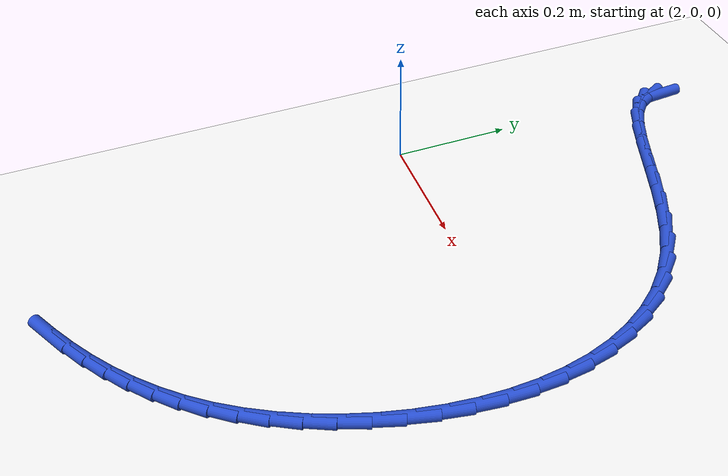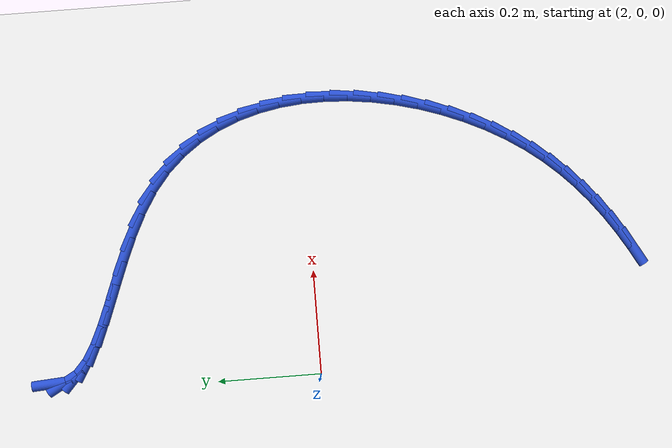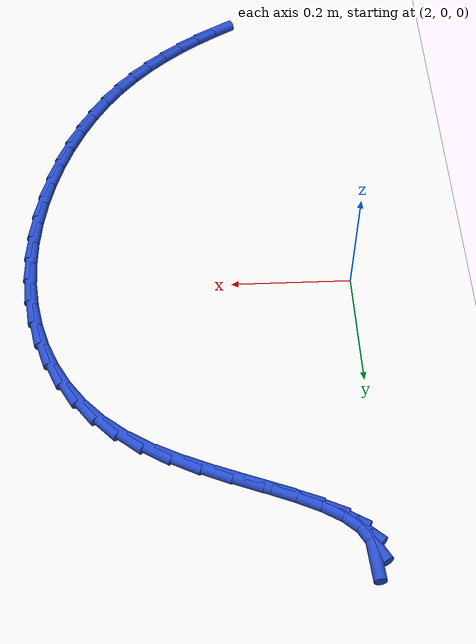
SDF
<sdf version="1.6">
 <world name="default">
  <model name="ground_plane">
   <static>1</static>
   <link name="link">
    <collision name="collision">
     <geometry><plane><normal>0 0 1</normal><size>100 100</size></plane></geometry>
     <surface><friction><ode><mu>100</mu><mu2>50</mu2></ode></friction></surface>
    </collision>
    <visual name="visual">
     <cast_shadows>0</cast_shadows>
     <geometry><plane><normal>0 0 1</normal><size>100 100</size></plane></geometry>
     <material>
      <script><uri>file://media/materials/scripts/gazebo.material</uri><name>Gazebo/WhiteGlow</name></script>
     </material>
    </visual>
   </link>
  </model>
  <model name="line">
   <link name="link_93">
    <pose>2.02116203512016 0.5168702736107054 0.01 0 1.57 -1.4988462729532606</pose>
    <collision name="collision">
     <geometry><cylinder><radius>0.01</radius><length>0.08</length></cylinder></geometry>
    </collision>
    <visual name="visual">
     <material>
      <script><name>Gazebo/Blue</name><uri>file://media/materials/scripts/gazebo.material</uri></script>
     </material>
     <geometry><cylinder><radius>0.01</radius><length>0.08</length></cylinder></geometry>
    </visual>
   </link>
   <link name="link_94">
    <pose>2.0230187391214285 0.49110936223888774 0.01 0 1.57 -1.0598061663948848</pose>
    <collision name="collision">
     <geometry><cylinder><radius>0.01</radius><length>0.08</length></cylinder></geometry>
    </collision>
    <visual name="visual">
     <material>
      <script><name>Gazebo/Blue</name><uri>file://media/materials/scripts/gazebo.material</uri></script>
     </material>
     <geometry><cylinder><radius>0.01</radius><length>0.08</length></cylinder></geometry>
    </visual>
   </link>
   <link name="link_95">
    <pose>2.035665746703249 0.46855198146039 0.01 0 1.57 -0.7318164709667517</pose>
    <collision name="collision">
     <geometry><cylinder><radius>0.01</radius><length>0.08</length></cylinder></geometry>
    </collision>
    <visual name="visual">
     <material>
      <script><name>Gazebo/Blue</name><uri>file://media/materials/scripts/gazebo.material</uri></script>
     </material>
     <geometry><cylinder><radius>0.01</radius><length>0.08</length></cylinder></geometry>
    </visual>
   </link>
   <link name="link_96">
    <pose>2.057892944651005 0.4485876433886255 0.01 0 1.57 -0.5400194395277362</pose>
    <collision name="collision">
     <geometry><cylinder><radius>0.01</radius><length>0.08</length></cylinder></geometry>
    </collision>
    <visual name="visual">
     <material>
      <script><name>Gazebo/Blue</name><uri>file://media/materials/scripts/gazebo.material</uri></script>
     </material>
     <geometry><cylinder><radius>0.01</radius><length>0.08</length></cylinder></geometry>
    </visual>
   </link>
   <link name="link_97">
    <pose>2.0880586842897038 0.430504608321955 0.01 0 1.57 -0.434318019015715</pose>
    <collision name="collision">
     <geometry><cylinder><radius>0.01</radius><length>0.08</length></cylinder></geometry>
    </collision>
    <visual name="visual">
     <material>
      <script><name>Gazebo/Blue</name><uri>file://media/materials/scripts/gazebo.material</uri></script>
     </material>
     <geometry><cylinder><radius>0.01</radius><length>0.08</length></cylinder></geometry>
    </visual>
   </link>
   <link name="link_98">
    <pose>2.1245213169443553 0.41359113655873975 0.01 0 1.57 -0.38068451838677303</pose>
    <collision name="collision">
     <geometry><cylinder><radius>0.01</radius><length>0.08</length></cylinder></geometry>
    </collision>
    <visual name="visual">
     <material>
      <script><name>Gazebo/Blue</name><uri>file://media/materials/scripts/gazebo.material</uri></script>
     </material>
     <geometry><cylinder><radius>0.01</radius><length>0.08</length></cylinder></geometry>
    </visual>
   </link>
   <link name="link_99">
    <pose>2.165639193939969 0.39713548839734153 0.01 0 1.57 -0.3619506153966358</pose>
    <collision name="collision">
     <geometry><cylinder><radius>0.01</radius><length>0.08</length></cylinder></geometry>
    </collision>
    <visual name="visual">
     <material>
      <script><name>Gazebo/Blue</name><uri>file://media/materials/scripts/gazebo.material</uri></script>
     </material>
     <geometry><cylinder><radius>0.01</radius><length>0.08</length></cylinder></geometry>
    </visual>
   </link>
   <link name="link_100">
    <pose>2.209770666601555 0.380425924136121 0.01 0 1.57 -0.37049886083972206</pose>
    <collision name="collision">
     <geometry><cylinder><radius>0.01</radius><length>0.08</length></cylinder></geometry>
    </collision>
    <visual name="visual">
     <material>
      <script><name>Gazebo/Blue</name><uri>file://media/materials/scripts/gazebo.material</uri></script>
     </material>
     <geometry><cylinder><radius>0.01</radius><length>0.08</length></cylinder></geometry>
    </visual>
   </link>
   <link name="link_101">
    <pose>2.255274086254121 0.36275070407344 0.01 0 1.57 -0.4042703592153089</pose>
    <collision name="collision">
     <geometry><cylinder><radius>0.01</radius><length>0.08</length></cylinder></geometry>
    </collision>
    <visual name="visual">
     <material>
      <script><name>Gazebo/Blue</name><uri>file://media/materials/scripts/gazebo.material</uri></script>
     </material>
     <geometry><cylinder><radius>0.01</radius><length>0.08</length></cylinder></geometry>
    </visual>
   </link>
   <link name="link_102">
    <pose>2.3005078042226783 0.3433980885076596 0.01 0 1.57 -0.46513426862723745</pose>
    <collision name="collision">
     <geometry><cylinder><radius>0.01</radius><length>0.08</length></cylinder></geometry>
    </collision>
    <visual name="visual">
     <material>
      <script><name>Gazebo/Blue</name><uri>file://media/materials/scripts/gazebo.material</uri></script>
     </material>
     <geometry><cylinder><radius>0.01</radius><length>0.08</length></cylinder></geometry>
    </visual>
   </link>
   <link name="link_103">
    <pose>2.3438301718322334 0.3216563377371411 0.01 0 1.57 -0.5583598120597915</pose>
    <collision name="collision">
     <geometry><cylinder><radius>0.01</radius><length>0.08</length></cylinder></geometry>
    </collision>
    <visual name="visual">
     <material>
      <script><name>Gazebo/Blue</name><uri>file://media/materials/scripts/gazebo.material</uri></script>
     </material>
     <geometry><cylinder><radius>0.01</radius><length>0.08</length></cylinder></geometry>
    </visual>
   </link>
   <link name="link_104">
    <pose>2.383599551825562 0.2968137188191711 0.01 0 1.57 -0.6838686317535361</pose>
    <collision name="collision">
     <geometry><cylinder><radius>0.01</radius><length>0.08</length></cylinder></geometry>
    </collision>
    <visual name="visual">
     <material>
      <script><name>Gazebo/Blue</name><uri>file://media/materials/scripts/gazebo.material</uri></script>
     </material>
     <geometry><cylinder><radius>0.01</radius><length>0.08</length></cylinder></geometry>
    </visual>
   </link>
   <link name="link_105">
    <pose>2.4185112046621757 0.2683579307216761 0.01 0 1.57 -0.8159783423693363</pose>
    <collision name="collision">
     <geometry><cylinder><radius>0.01</radius><length>0.08</length></cylinder></geometry>
    </collision>
    <visual name="visual">
     <material>
      <script><name>Gazebo/Blue</name><uri>file://media/materials/scripts/gazebo.material</uri></script>
     </material>
     <geometry><cylinder><radius>0.01</radius><length>0.08</length></cylinder></geometry>
    </visual>
   </link>
   <link name="link_106">
    <pose>2.448479496741817 0.23649834137871623 0.01 0 1.57 -0.9450095222325091</pose>
    <collision name="collision">
     <geometry><cylinder><radius>0.01</radius><length>0.08</length></cylinder></geometry>
    </collision>
    <visual name="visual">
     <material>
      <script><name>Gazebo/Blue</name><uri>file://media/materials/scripts/gazebo.material</uri></script>
     </material>
     <geometry><cylinder><radius>0.01</radius><length>0.08</length></cylinder></geometry>
    </visual>
   </link>
   <link name="link_107">
    <pose>2.473694459685082 0.20160750309444755 0.01 0 1.57 -1.0679649499202455</pose>
    <collision name="collision">
     <geometry><cylinder><radius>0.01</radius><length>0.08</length></cylinder></geometry>
    </collision>
    <visual name="visual">
     <material>
      <script><name>Gazebo/Blue</name><uri>file://media/materials/scripts/gazebo.material</uri></script>
     </material>
     <geometry><cylinder><radius>0.01</radius><length>0.08</length></cylinder></geometry>
    </visual>
   </link>
   <link name="link_108">
    <pose>2.494346125112571 0.1640579681730248 0.01 0 1.57 -1.1828650631386706</pose>
    <collision name="collision">
     <geometry><cylinder><radius>0.01</radius><length>0.08</length></cylinder></geometry>
    </collision>
    <visual name="visual">
     <material>
      <script><name>Gazebo/Blue</name><uri>file://media/materials/scripts/gazebo.material</uri></script>
     </material>
     <geometry><cylinder><radius>0.01</radius><length>0.08</length></cylinder></geometry>
    </visual>
   </link>
   <link name="link_109">
    <pose>2.5106245246448826 0.12422228891860373 0.01 0 1.57 -1.2888067849018316</pose>
    <collision name="collision">
     <geometry><cylinder><radius>0.01</radius><length>0.08</length></cylinder></geometry>
    </collision>
    <visual name="visual">
     <material>
      <script><name>Gazebo/Blue</name><uri>file://media/materials/scripts/gazebo.material</uri></script>
     </material>
     <geometry><cylinder><radius>0.01</radius><length>0.08</length></cylinder></geometry>
    </visual>
   </link>
   <link name="link_110">
    <pose>2.522719689902614 0.08247301763533894 0.01 0 1.57 -1.3857824741090745</pose>
    <collision name="collision">
     <geometry><cylinder><radius>0.01</radius><length>0.08</length></cylinder></geometry>
    </collision>
    <visual name="visual">
     <material>
      <script><name>Gazebo/Blue</name><uri>file://media/materials/scripts/gazebo.material</uri></script>
     </material>
     <geometry><cylinder><radius>0.01</radius><length>0.08</length></cylinder></geometry>
    </visual>
   </link>
   <link name="link_111">
    <pose>2.5308216525063636 0.039182706627386536 0.01 0 1.57 -1.4744043969422305</pose>
    <collision name="collision">
     <geometry><cylinder><radius>0.01</radius><length>0.08</length></cylinder></geometry>
    </collision>
    <visual name="visual">
     <material>
      <script><name>Gazebo/Blue</name><uri>file://media/materials/scripts/gazebo.material</uri></script>
     </material>
     <geometry><cylinder><radius>0.01</radius><length>0.08</length></cylinder></geometry>
    </visual>
   </link>
   <link name="link_112">
    <pose>2.5351204440767305 -0.005276091801098622 0.01 0 1.57 -1.5556465369939596</pose>
    <collision name="collision">
     <geometry><cylinder><radius>0.01</radius><length>0.08</length></cylinder></geometry>
    </collision>
    <visual name="visual">
     <material>
      <script><name>Gazebo/Blue</name><uri>file://media/materials/scripts/gazebo.material</uri></script>
     </material>
     <geometry><cylinder><radius>0.01</radius><length>0.08</length></cylinder></geometry>
    </visual>
   </link>
   <link name="link_113">
    <pose>2.535806096234312 -0.05053082534596127 0.01 0 1.57 1.5109386598979953</pose>
    <collision name="collision">
     <geometry><cylinder><radius>0.01</radius><length>0.08</length></cylinder></geometry>
    </collision>
    <visual name="visual">
     <material>
      <script><name>Gazebo/Blue</name><uri>file://media/materials/scripts/gazebo.material</uri></script>
     </material>
     <geometry><cylinder><radius>0.01</radius><length>0.08</length></cylinder></geometry>
    </visual>
   </link>
   <link name="link_114">
    <pose>2.533068640599707 -0.09620894170304731 0.01 0 1.57 1.4409672178803914</pose>
    <collision name="collision">
     <geometry><cylinder><radius>0.01</radius><length>0.08</length></cylinder></geometry>
    </collision>
    <visual name="visual">
     <material>
      <script><name>Gazebo/Blue</name><uri>file://media/materials/scripts/gazebo.material</uri></script>
     </material>
     <geometry><cylinder><radius>0.01</radius><length>0.08</length></cylinder></geometry>
    </visual>
   </link>
   <link name="link_115">
    <pose>2.527098108793514 -0.14193788856819917 0.01 0 1.57 1.3748383584646302</pose>
    <collision name="collision">
     <geometry><cylinder><radius>0.01</radius><length>0.08</length></cylinder></geometry>
    </collision>
    <visual name="visual">
     <material>
      <script><name>Gazebo/Blue</name><uri>file://media/materials/scripts/gazebo.material</uri></script>
     </material>
     <geometry><cylinder><radius>0.01</radius><length>0.08</length></cylinder></geometry>
    </visual>
   </link>
   <link name="link_116">
    <pose>2.51808453243633 -0.1873451136372628 0.01 0 1.57 1.311381641717656</pose>
    <collision name="collision">
     <geometry><cylinder><radius>0.01</radius><length>0.08</length></cylinder></geometry>
    </collision>
    <visual name="visual">
     <material>
      <script><name>Gazebo/Blue</name><uri>file://media/materials/scripts/gazebo.material</uri></script>
     </material>
     <geometry><cylinder><radius>0.01</radius><length>0.08</length></cylinder></geometry>
    </visual>
   </link>
   <link name="link_117">
    <pose>2.506217943148755 -0.2320580646060828 0.01 0 1.57 1.2494404488310307</pose>
    <collision name="collision">
     <geometry><cylinder><radius>0.01</radius><length>0.08</length></cylinder></geometry>
    </collision>
    <visual name="visual">
     <material>
      <script><name>Gazebo/Blue</name><uri>file://media/materials/scripts/gazebo.material</uri></script>
     </material>
     <geometry><cylinder><radius>0.01</radius><length>0.08</length></cylinder></geometry>
    </visual>
   </link>
   <link name="link_118">
    <pose>2.4916883725513865 -0.2757041891705052 0.01 0 1.57 1.1878449956548298</pose>
    <collision name="collision">
     <geometry><cylinder><radius>0.01</radius><length>0.08</length></cylinder></geometry>
    </collision>
    <visual name="visual">
     <material>
      <script><name>Gazebo/Blue</name><uri>file://media/materials/scripts/gazebo.material</uri></script>
     </material>
     <geometry><cylinder><radius>0.01</radius><length>0.08</length></cylinder></geometry>
    </visual>
   </link>
   <link name="link_119">
    <pose>2.4746858522648236 -0.31791093502637224 0.01 0 1.57 1.1253723998013496</pose>
    <collision name="collision">
     <geometry><cylinder><radius>0.01</radius><length>0.08</length></cylinder></geometry>
    </collision>
    <visual name="visual">
     <material>
      <script><name>Gazebo/Blue</name><uri>file://media/materials/scripts/gazebo.material</uri></script>
     </material>
     <geometry><cylinder><radius>0.01</radius><length>0.08</length></cylinder></geometry>
    </visual>
   </link>
   <link name="link_120">
    <pose>2.455400413909663 -0.3583057498695301 0.01 0 1.57 1.0606958087835576</pose>
    <collision name="collision">
     <geometry><cylinder><radius>0.01</radius><length>0.08</length></cylinder></geometry>
    </collision>
    <visual name="visual">
     <material>
      <script><name>Gazebo/Blue</name><uri>file://media/materials/scripts/gazebo.material</uri></script>
     </material>
     <geometry><cylinder><radius>0.01</radius><length>0.08</length></cylinder></geometry>
    </visual>
   </link>
   <link name="link_121">
    <pose>2.4340220891065045 -0.39651608139582334 0.01 0 1.57 0.9923702718790144</pose>
    <collision name="collision">
     <geometry><cylinder><radius>0.01</radius><length>0.08</length></cylinder></geometry>
    </collision>
    <visual name="visual">
     <material>
      <script><name>Gazebo/Blue</name><uri>file://media/materials/scripts/gazebo.material</uri></script>
     </material>
     <geometry><cylinder><radius>0.01</radius><length>0.08</length></cylinder></geometry>
    </visual>
   </link>
   <link name="link_122">
    <pose>2.410739501047815 -0.43217518957216117 0.01 0 1.57 0.9211348872161008</pose>
    <collision name="collision">
     <geometry><cylinder><radius>0.01</radius><length>0.08</length></cylinder></geometry>
    </collision>
    <visual name="visual">
     <material>
      <script><name>Gazebo/Blue</name><uri>file://media/materials/scripts/gazebo.material</uri></script>
     </material>
     <geometry><cylinder><radius>0.01</radius><length>0.08</length></cylinder></geometry>
    </visual>
   </link>
   <link name="link_123">
    <pose>2.3856823723416265 -0.46515940403675254 0.01 0 1.57 0.8504234866026936</pose>
    <collision name="collision">
     <geometry><cylinder><radius>0.01</radius><length>0.08</length></cylinder></geometry>
    </collision>
    <visual name="visual">
     <material>
      <script><name>Gazebo/Blue</name><uri>file://media/materials/scripts/gazebo.material</uri></script>
     </material>
     <geometry><cylinder><radius>0.01</radius><length>0.08</length></cylinder></geometry>
    </visual>
   </link>
   <link name="link_124">
    <pose>2.3589014215896955 -0.49567108647010893 0.01 0 1.57 0.7819564977393321</pose>
    <collision name="collision">
     <geometry><cylinder><radius>0.01</radius><length>0.08</length></cylinder></geometry>
    </collision>
    <visual name="visual">
     <material>
      <script><name>Gazebo/Blue</name><uri>file://media/materials/scripts/gazebo.material</uri></script>
     </material>
     <geometry><cylinder><radius>0.01</radius><length>0.08</length></cylinder></geometry>
    </visual>
   </link>
   <link name="link_125">
    <pose>2.3304418292846796 -0.5239354531028357 0.01 0 1.57 0.7171495833386944</pose>
    <collision name="collision">
     <geometry><cylinder><radius>0.01</radius><length>0.08</length></cylinder></geometry>
    </collision>
    <visual name="visual">
     <material>
      <script><name>Gazebo/Blue</name><uri>file://media/materials/scripts/gazebo.material</uri></script>
     </material>
     <geometry><cylinder><radius>0.01</radius><length>0.08</length></cylinder></geometry>
    </visual>
   </link>
   <link name="link_126">
    <pose>2.3003487759192356 -0.5501777201655386 0.01 0 1.57 0.6571837135725169</pose>
    <collision name="collision">
     <geometry><cylinder><radius>0.01</radius><length>0.08</length></cylinder></geometry>
    </collision>
    <visual name="visual">
     <material>
      <script><name>Gazebo/Blue</name><uri>file://media/materials/scripts/gazebo.material</uri></script>
     </material>
     <geometry><cylinder><radius>0.01</radius><length>0.08</length></cylinder></geometry>
    </visual>
   </link>
   <link name="link_127">
    <pose>2.268667441986027 -0.5746231038888223 0.01 0 1.57 0.602939402412325</pose>
    <collision name="collision">
     <geometry><cylinder><radius>0.01</radius><length>0.08</length></cylinder></geometry>
    </collision>
    <visual name="visual">
     <material>
      <script><name>Gazebo/Blue</name><uri>file://media/materials/scripts/gazebo.material</uri></script>
     </material>
     <geometry><cylinder><radius>0.01</radius><length>0.08</length></cylinder></geometry>
    </visual>
   </link>
   <link name="link_128">
    <pose>2.2354430079777106 -0.5974968205032927 0.01 0 1.57 0.5549833807779985</pose>
    <collision name="collision">
     <geometry><cylinder><radius>0.01</radius><length>0.08</length></cylinder></geometry>
    </collision>
    <visual name="visual">
     <material>
      <script><name>Gazebo/Blue</name><uri>file://media/materials/scripts/gazebo.material</uri></script>
     </material>
     <geometry><cylinder><radius>0.01</radius><length>0.08</length></cylinder></geometry>
    </visual>
   </link>
   <link name="link_129">
    <pose>2.200720654386947 -0.6190240862395555 0.01 0 1.57 0.5135969570484896</pose>
    <collision name="collision">
     <geometry><cylinder><radius>0.01</radius><length>0.08</length></cylinder></geometry>
    </collision>
    <visual name="visual">
     <material>
      <script><name>Gazebo/Blue</name><uri>file://media/materials/scripts/gazebo.material</uri></script>
     </material>
     <geometry><cylinder><radius>0.01</radius><length>0.08</length></cylinder></geometry>
    </visual>
   </link>
  </model>
 </world>
</sdf>
